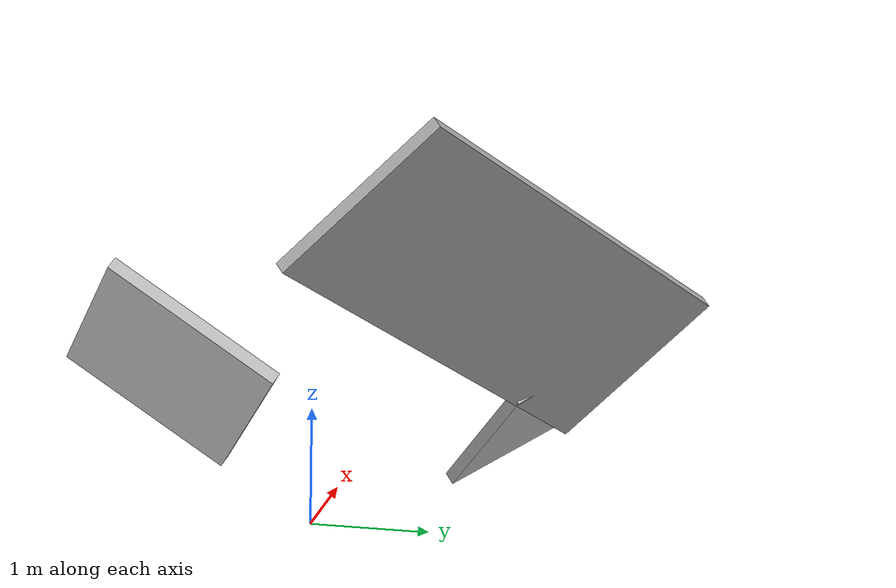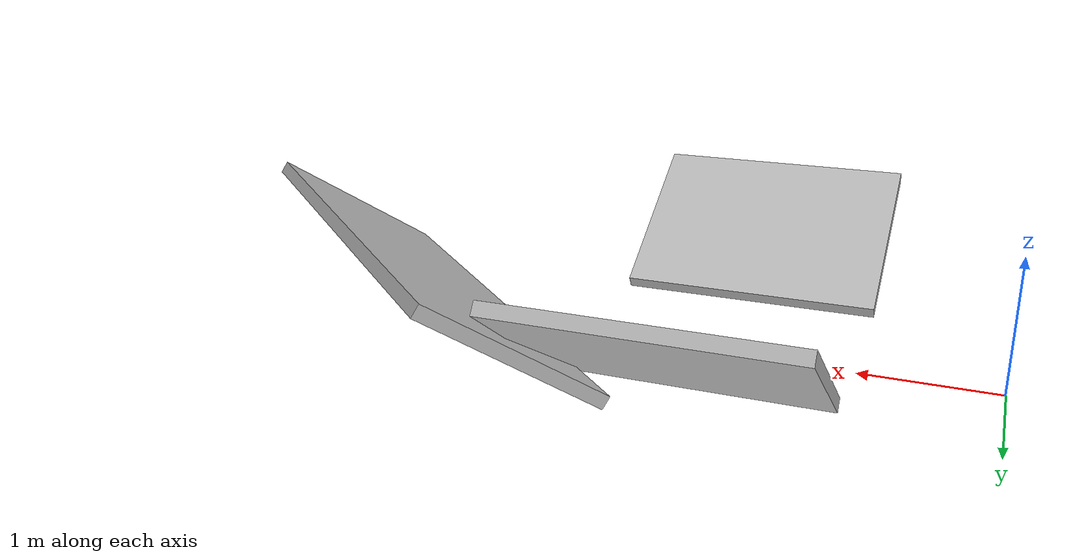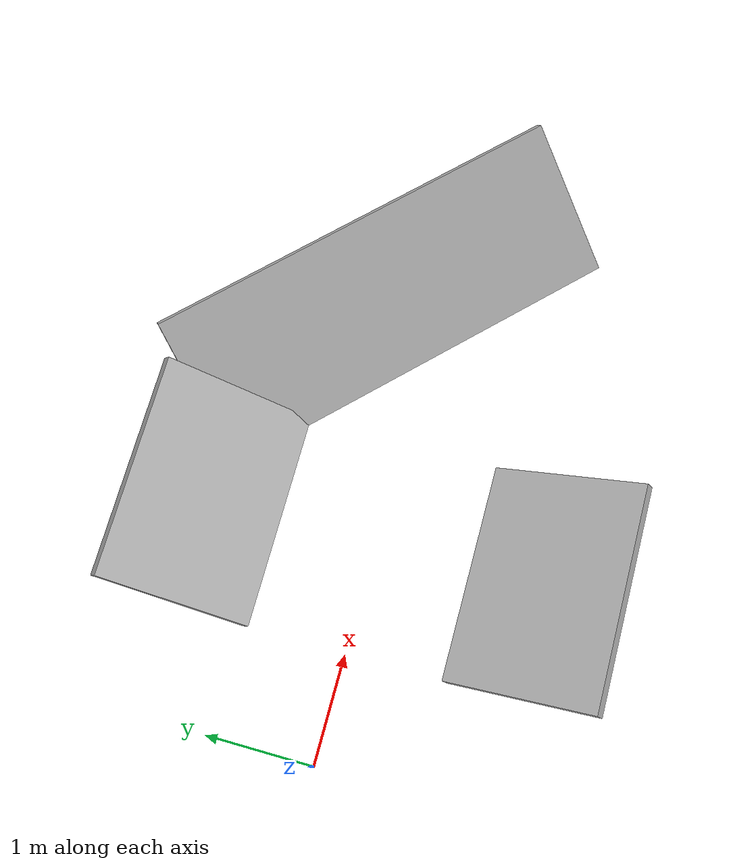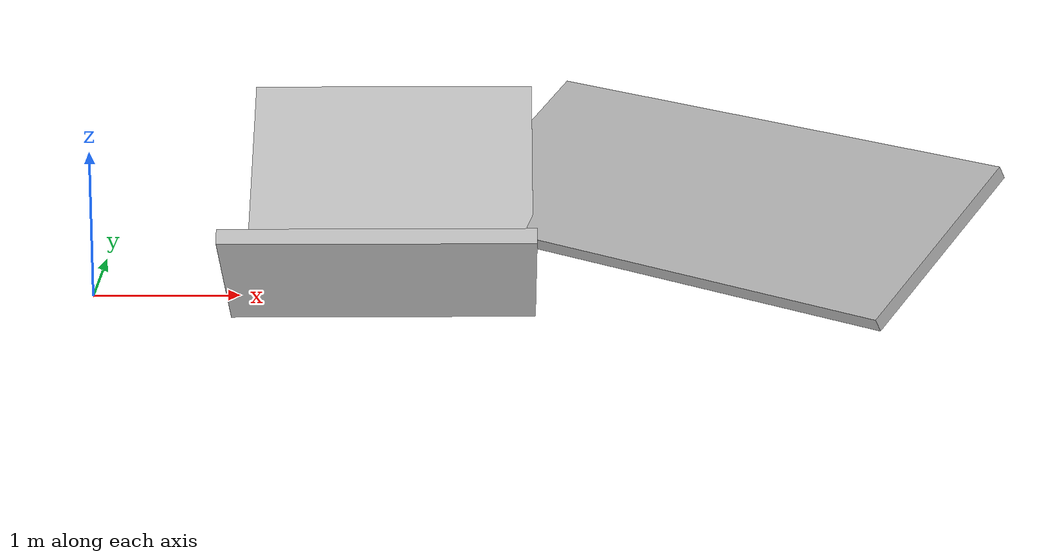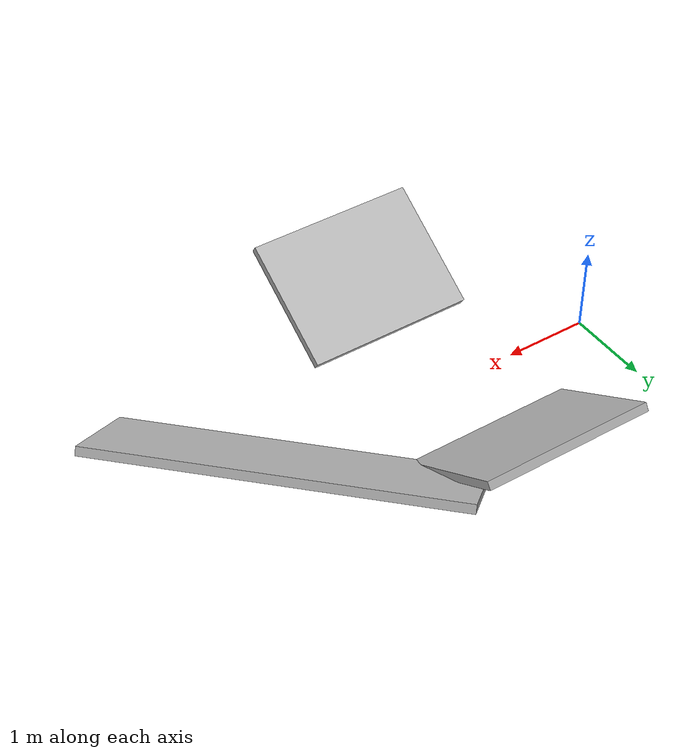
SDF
<?xml version="1.0" ?>
<sdf version="1.4">
    <model name="funnel_right">
      <pose>1.0 0.0 0.2 0 0 0</pose>
      <static>true</static>
      <link name="right1">
        <visual name="box_visual">
          <pose>1 -1.55 0.35 1 0 0</pose>
          <geometry>
          <mesh>
            <uri>model://gazebo_worlds_cdt/models/grass_box/meshes/grass_box.dae</uri>
            <scale>2 0.1 1.5</scale>
          </mesh>
          </geometry>
        </visual>
        <collision name="box_collision">
          <pose>1 -1.55 0.35 1 0 0</pose>
          <geometry>
            <box>
              <size>2 0.1 1.5</size>
            </box>
          </geometry>
        </collision>
      </link>
      <link name="left1">
        <visual name="box_visual">
          <pose>1 1.55 0.35 -1 0 0</pose>
          <geometry>
          <mesh>
            <uri>model://gazebo_worlds_cdt/models/grass_box/meshes/grass_box.dae</uri>
            <scale>2 0.1 1.5</scale>
          </mesh>
          </geometry>
        </visual>
        <collision name="box_collision">
          <pose>1 1.55 0.35 -1 0 0</pose>
          <geometry>
            <box>
              <size>2 0.1 1.5</size>
            </box>
          </geometry>
        </collision>
      </link>

      <link name="left2">
        <visual name="box_visual">
          <pose>3.25 0.5 0.35 -1 0 -0.7855</pose>
          <geometry>
          <mesh>
            <uri>model://gazebo_worlds_cdt/models/grass_box/meshes/grass_box.dae</uri>
            <scale>4 0.1 1.5</scale>
          </mesh>
          </geometry>
        </visual>
        <collision name="box_collision">
          <pose>3.25 0.5 0.35 -1 0 -0.7855</pose>
          <geometry>
            <box>
              <size>4 0.1 1.5</size>
            </box>
          </geometry>
        </collision>
      </link>
    </model>
</sdf>
